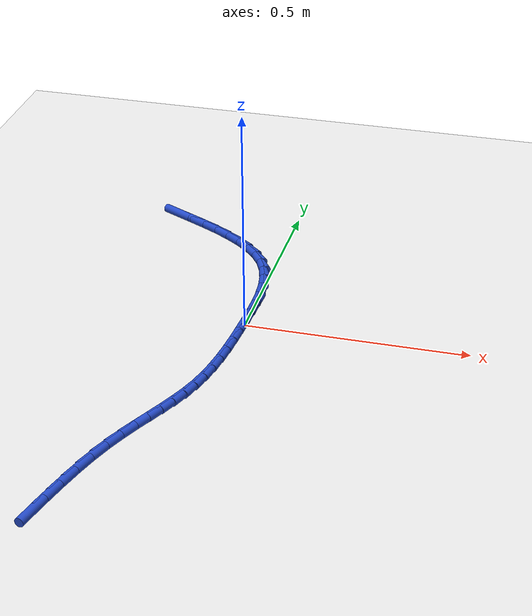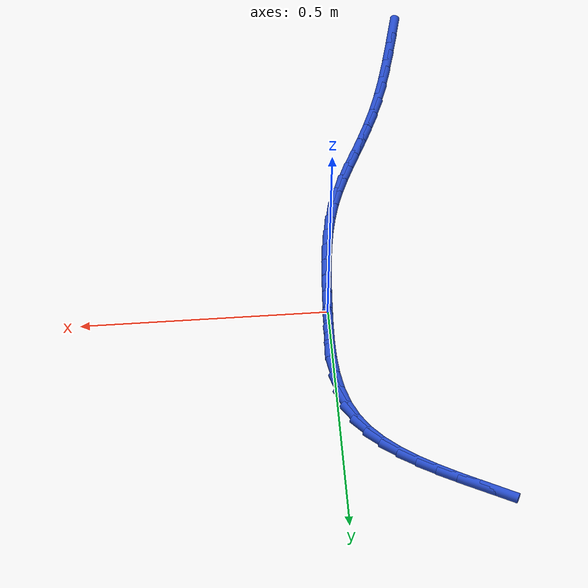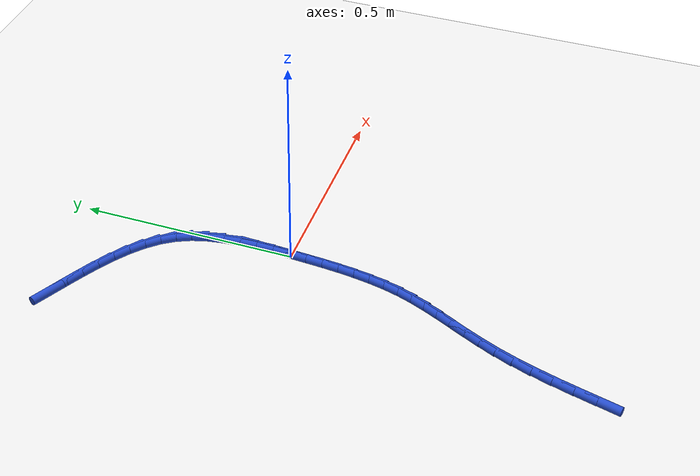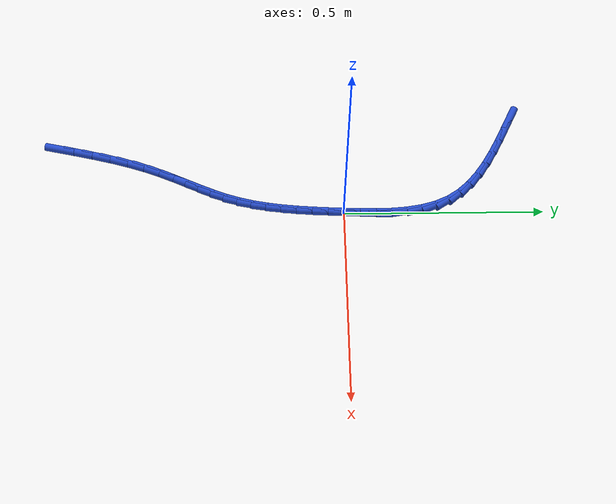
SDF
<sdf version="1.6">
 <world name="default">
  <model name="ground_plane">
   <static>1</static>
   <link name="link">
    <collision name="collision">
     <geometry><plane><normal>0 0 1</normal><size>100 100</size></plane></geometry>
     <surface><friction><ode><mu>100</mu><mu2>50</mu2></ode></friction></surface>
    </collision>
    <visual name="visual">
     <cast_shadows>0</cast_shadows>
     <geometry><plane><normal>0 0 1</normal><size>100 100</size></plane></geometry>
     <material>
      <script><uri>file://media/materials/scripts/gazebo.material</uri><name>Gazebo/WhiteGlow</name></script>
     </material>
    </visual>
   </link>
  </model>
  <model name="line">
   <link name="link_0">
    <pose>-2.168404344971009e-19 4.163336342344337e-17 0.01 0 1.57 1.52902783664615</pose>
    <collision name="collision">
     <geometry><cylinder><radius>0.01</radius><length>0.08</length></cylinder></geometry>
    </collision>
    <visual name="visual">
     <material>
      <script><name>Gazebo/Blue</name><uri>file://media/materials/scripts/gazebo.material</uri></script>
     </material>
     <geometry><cylinder><radius>0.01</radius><length>0.08</length></cylinder></geometry>
    </visual>
   </link>
   <link name="link_1">
    <pose>0.001682335990997134 0.04025420916461507 0.01 0 1.57 1.5522324395835811</pose>
    <collision name="collision">
     <geometry><cylinder><radius>0.01</radius><length>0.08</length></cylinder></geometry>
    </collision>
    <visual name="visual">
     <material>
      <script><name>Gazebo/Blue</name><uri>file://media/materials/scripts/gazebo.material</uri></script>
     </material>
     <geometry><cylinder><radius>0.01</radius><length>0.08</length></cylinder></geometry>
    </visual>
   </link>
   <link name="link_2">
    <pose>0.0024287794368318865 0.08045902669245655 0.01 0 1.57 -1.547395278893823</pose>
    <collision name="collision">
     <geometry><cylinder><radius>0.01</radius><length>0.08</length></cylinder></geometry>
    </collision>
    <visual name="visual">
     <material>
      <script><name>Gazebo/Blue</name><uri>file://media/materials/scripts/gazebo.material</uri></script>
     </material>
     <geometry><cylinder><radius>0.01</radius><length>0.08</length></cylinder></geometry>
    </visual>
   </link>
   <link name="link_3">
    <pose>0.0015000876354641073 0.12013768890854712 0.01 0 1.57 -1.4845722345314745</pose>
    <collision name="collision">
     <geometry><cylinder><radius>0.01</radius><length>0.08</length></cylinder></geometry>
    </collision>
    <visual name="visual">
     <material>
      <script><name>Gazebo/Blue</name><uri>file://media/materials/scripts/gazebo.material</uri></script>
     </material>
     <geometry><cylinder><radius>0.01</radius><length>0.08</length></cylinder></geometry>
    </visual>
   </link>
   <link name="link_4">
    <pose>-0.0018429821151463533 0.15881343213790933 0.01 0 1.57 -1.3978798858954011</pose>
    <collision name="collision">
     <geometry><cylinder><radius>0.01</radius><length>0.08</length></cylinder></geometry>
    </collision>
    <visual name="visual">
     <material>
      <script><name>Gazebo/Blue</name><uri>file://media/materials/scripts/gazebo.material</uri></script>
     </material>
     <geometry><cylinder><radius>0.01</radius><length>0.08</length></cylinder></geometry>
    </visual>
   </link>
   <link name="link_5">
    <pose>-0.008339672517039648 0.19600949270556564 0.01 0 1.57 -1.2840930743274215</pose>
    <collision name="collision">
     <geometry><cylinder><radius>0.01</radius><length>0.08</length></cylinder></geometry>
    </collision>
    <visual name="visual">
     <material>
      <script><name>Gazebo/Blue</name><uri>file://media/materials/scripts/gazebo.material</uri></script>
     </material>
     <geometry><cylinder><radius>0.01</radius><length>0.08</length></cylinder></geometry>
    </visual>
   </link>
   <link name="link_6">
    <pose>-0.018729226272255935 0.23124910693653877 0.01 0 1.57 -1.1414021076417333</pose>
    <collision name="collision">
     <geometry><cylinder><radius>0.01</radius><length>0.08</length></cylinder></geometry>
    </collision>
    <visual name="visual">
     <material>
      <script><name>Gazebo/Blue</name><uri>file://media/materials/scripts/gazebo.material</uri></script>
     </material>
     <geometry><cylinder><radius>0.01</radius><length>0.08</length></cylinder></geometry>
    </visual>
   </link>
   <link name="link_7">
    <pose>-0.03375088608283535 0.2640555111558512 0.01 0 1.57 -0.9764500421237643</pose>
    <collision name="collision">
     <geometry><cylinder><radius>0.01</radius><length>0.08</length></cylinder></geometry>
    </collision>
    <visual name="visual">
     <material>
      <script><name>Gazebo/Blue</name><uri>file://media/materials/scripts/gazebo.material</uri></script>
     </material>
     <geometry><cylinder><radius>0.01</radius><length>0.08</length></cylinder></geometry>
    </visual>
   </link>
   <link name="link_8">
    <pose>-0.05401029808813432 0.2940308731569614 0.01 0 1.57 -0.8261137103228651</pose>
    <collision name="collision">
     <geometry><cylinder><radius>0.01</radius><length>0.08</length></cylinder></geometry>
    </collision>
    <visual name="visual">
     <material>
      <script><name>Gazebo/Blue</name><uri>file://media/materials/scripts/gazebo.material</uri></script>
     </material>
     <geometry><cylinder><radius>0.01</radius><length>0.08</length></cylinder></geometry>
    </visual>
   </link>
   <link name="link_9">
    <pose>-0.07917419012969613 0.3213320920714619 0.01 0 1.57 -0.7062568643937363</pose>
    <collision name="collision">
     <geometry><cylinder><radius>0.01</radius><length>0.08</length></cylinder></geometry>
    </collision>
    <visual name="visual">
     <material>
      <script><name>Gazebo/Blue</name><uri>file://media/materials/scripts/gazebo.material</uri></script>
     </material>
     <geometry><cylinder><radius>0.01</radius><length>0.08</length></cylinder></geometry>
    </visual>
   </link>
   <link name="link_10">
    <pose>-0.10850670000065454 0.34635392512444896 0.01 0 1.57 -0.6148824756712293</pose>
    <collision name="collision">
     <geometry><cylinder><radius>0.01</radius><length>0.08</length></cylinder></geometry>
    </collision>
    <visual name="visual">
     <material>
      <script><name>Gazebo/Blue</name><uri>file://media/materials/scripts/gazebo.material</uri></script>
     </material>
     <geometry><cylinder><radius>0.01</radius><length>0.08</length></cylinder></geometry>
    </visual>
   </link>
   <link name="link_11">
    <pose>-0.1412704261000338 0.36949203904523936 0.01 0 1.57 -0.5481707559389956</pose>
    <collision name="collision">
     <geometry><cylinder><radius>0.01</radius><length>0.08</length></cylinder></geometry>
    </collision>
    <visual name="visual">
     <material>
      <script><name>Gazebo/Blue</name><uri>file://media/materials/scripts/gazebo.material</uri></script>
     </material>
     <geometry><cylinder><radius>0.01</radius><length>0.08</length></cylinder></geometry>
    </visual>
   </link>
   <link name="link_12">
    <pose>-0.176727966826858 0.3911421005631499 0.01 0 1.57 -0.5024327338839962</pose>
    <collision name="collision">
     <geometry><cylinder><radius>0.01</radius><length>0.08</length></cylinder></geometry>
    </collision>
    <visual name="visual">
     <material>
      <script><name>Gazebo/Blue</name><uri>file://media/materials/scripts/gazebo.material</uri></script>
     </material>
     <geometry><cylinder><radius>0.01</radius><length>0.08</length></cylinder></geometry>
    </visual>
   </link>
   <link name="link_13">
    <pose>-0.2141419205801512 0.4116997764074969 0.01 0 1.57 -0.47485874763186886</pose>
    <collision name="collision">
     <geometry><cylinder><radius>0.01</radius><length>0.08</length></cylinder></geometry>
    </collision>
    <visual name="visual">
     <material>
      <script><name>Gazebo/Blue</name><uri>file://media/materials/scripts/gazebo.material</uri></script>
     </material>
     <geometry><cylinder><radius>0.01</radius><length>0.08</length></cylinder></geometry>
    </visual>
   </link>
   <link name="link_14">
    <pose>-0.2527748857589378 0.4315607333075975 0.01 0 1.57 -0.46370113612660235</pose>
    <collision name="collision">
     <geometry><cylinder><radius>0.01</radius><length>0.08</length></cylinder></geometry>
    </collision>
    <visual name="visual">
     <material>
      <script><name>Gazebo/Blue</name><uri>file://media/materials/scripts/gazebo.material</uri></script>
     </material>
     <geometry><cylinder><radius>0.01</radius><length>0.08</length></cylinder></geometry>
    </visual>
   </link>
   <link name="link_15">
    <pose>-0.2918894607622417 0.4511206379927679 0.01 0 1.57 -0.4682716443202669</pose>
    <collision name="collision">
     <geometry><cylinder><radius>0.01</radius><length>0.08</length></cylinder></geometry>
    </collision>
    <visual name="visual">
     <material>
      <script><name>Gazebo/Blue</name><uri>file://media/materials/scripts/gazebo.material</uri></script>
     </material>
     <geometry><cylinder><radius>0.01</radius><length>0.08</length></cylinder></geometry>
    </visual>
   </link>
   <link name="link_211">
    <pose>-0.20534447398992722 -0.7341957206515657 0.01 0 1.57 1.3374356050256042</pose>
    <collision name="collision">
     <geometry><cylinder><radius>0.01</radius><length>0.08</length></cylinder></geometry>
    </collision>
    <visual name="visual">
     <material>
      <script><name>Gazebo/Blue</name><uri>file://media/materials/scripts/gazebo.material</uri></script>
     </material>
     <geometry><cylinder><radius>0.01</radius><length>0.08</length></cylinder></geometry>
    </visual>
   </link>
   <link name="link_212">
    <pose>-0.193663808148834 -0.6850535182315074 0.01 0 1.57 1.3228942203919856</pose>
    <collision name="collision">
     <geometry><cylinder><radius>0.01</radius><length>0.08</length></cylinder></geometry>
    </collision>
    <visual name="visual">
     <material>
      <script><name>Gazebo/Blue</name><uri>file://media/materials/scripts/gazebo.material</uri></script>
     </material>
     <geometry><cylinder><radius>0.01</radius><length>0.08</length></cylinder></geometry>
    </visual>
   </link>
   <link name="link_213">
    <pose>-0.1814786460205803 -0.6369114564018664 0.01 0 1.57 1.30064926898679</pose>
    <collision name="collision">
     <geometry><cylinder><radius>0.01</radius><length>0.08</length></cylinder></geometry>
    </collision>
    <visual name="visual">
     <material>
      <script><name>Gazebo/Blue</name><uri>file://media/materials/scripts/gazebo.material</uri></script>
     </material>
     <geometry><cylinder><radius>0.01</radius><length>0.08</length></cylinder></geometry>
    </visual>
   </link>
   <link name="link_214">
    <pose>-0.16859618346248287 -0.590390341800777 0.01 0 1.57 1.2692438725747424</pose>
    <collision name="collision">
     <geometry><cylinder><radius>0.01</radius><length>0.08</length></cylinder></geometry>
    </collision>
    <visual name="visual">
     <material>
      <script><name>Gazebo/Blue</name><uri>file://media/materials/scripts/gazebo.material</uri></script>
     </material>
     <geometry><cylinder><radius>0.01</radius><length>0.08</length></cylinder></geometry>
    </visual>
   </link>
   <link name="link_215">
    <pose>-0.15482361633185807 -0.5461109810663726 0.01 0 1.57 1.2266099709107525</pose>
    <collision name="collision">
     <geometry><cylinder><radius>0.01</radius><length>0.08</length></cylinder></geometry>
    </collision>
    <visual name="visual">
     <material>
      <script><name>Gazebo/Blue</name><uri>file://media/materials/scripts/gazebo.material</uri></script>
     </material>
     <geometry><cylinder><radius>0.01</radius><length>0.08</length></cylinder></geometry>
    </visual>
   </link>
   <link name="link_216">
    <pose>-0.13997384882007677 -0.5046837295988726 0.01 0 1.57 1.1799942939246177</pose>
    <collision name="collision">
     <geometry><cylinder><radius>0.01</radius><length>0.08</length></cylinder></geometry>
    </collision>
    <visual name="visual">
     <material>
      <script><name>Gazebo/Blue</name><uri>file://media/materials/scripts/gazebo.material</uri></script>
     </material>
     <geometry><cylinder><radius>0.01</radius><length>0.08</length></cylinder></geometry>
    </visual>
   </link>
   <link name="link_217">
    <pose>-0.12412931945143342 -0.4662254595136055 0.01 0 1.57 1.1445974065373254</pose>
    <collision name="collision">
     <geometry><cylinder><radius>0.01</radius><length>0.08</length></cylinder></geometry>
    </collision>
    <visual name="visual">
     <material>
      <script><name>Gazebo/Blue</name><uri>file://media/materials/scripts/gazebo.material</uri></script>
     </material>
     <geometry><cylinder><radius>0.01</radius><length>0.08</length></cylinder></geometry>
    </visual>
   </link>
   <link name="link_218">
    <pose>-0.10775295149193174 -0.43015642347059074 0.01 0 1.57 1.1245390527048043</pose>
    <collision name="collision">
     <geometry><cylinder><radius>0.01</radius><length>0.08</length></cylinder></geometry>
    </collision>
    <visual name="visual">
     <material>
      <script><name>Gazebo/Blue</name><uri>file://media/materials/scripts/gazebo.material</uri></script>
     </material>
     <geometry><cylinder><radius>0.01</radius><length>0.08</length></cylinder></geometry>
    </visual>
   </link>
   <link name="link_219">
    <pose>-0.09133639669186693 -0.39584427590740767 0.01 0 1.57 1.1224186056260346</pose>
    <collision name="collision">
     <geometry><cylinder><radius>0.01</radius><length>0.08</length></cylinder></geometry>
    </collision>
    <visual name="visual">
     <material>
      <script><name>Gazebo/Blue</name><uri>file://media/materials/scripts/gazebo.material</uri></script>
     </material>
     <geometry><cylinder><radius>0.01</radius><length>0.08</length></cylinder></geometry>
    </visual>
   </link>
   <link name="link_220">
    <pose>-0.07537130680153556 -0.3626566712616382 0.01 0 1.57 1.1401098999077428</pose>
    <collision name="collision">
     <geometry><cylinder><radius>0.01</radius><length>0.08</length></cylinder></geometry>
    </collision>
    <visual name="visual">
     <material>
      <script><name>Gazebo/Blue</name><uri>file://media/materials/scripts/gazebo.material</uri></script>
     </material>
     <geometry><cylinder><radius>0.01</radius><length>0.08</length></cylinder></geometry>
    </visual>
   </link>
   <link name="link_221">
    <pose>-0.06034933357123281 -0.3299612639708618 0.01 0 1.57 1.1784541438035625</pose>
    <collision name="collision">
     <geometry><cylinder><radius>0.01</radius><length>0.08</length></cylinder></geometry>
    </collision>
    <visual name="visual">
     <material>
      <script><name>Gazebo/Blue</name><uri>file://media/materials/scripts/gazebo.material</uri></script>
     </material>
     <geometry><cylinder><radius>0.01</radius><length>0.08</length></cylinder></geometry>
    </visual>
   </link>
   <link name="link_222">
    <pose>-0.046762128751254364 -0.29712570847265846 0.01 0 1.57 1.2367996524071434</pose>
    <collision name="collision">
     <geometry><cylinder><radius>0.01</radius><length>0.08</length></cylinder></geometry>
    </collision>
    <visual name="visual">
     <material>
      <script><name>Gazebo/Blue</name><uri>file://media/materials/scripts/gazebo.material</uri></script>
     </material>
     <geometry><cylinder><radius>0.01</radius><length>0.08</length></cylinder></geometry>
    </visual>
   </link>
   <link name="link_223">
    <pose>-0.03510052234546612 -0.26351844335373553 0.01 0 1.57 1.3054086069947681</pose>
    <collision name="collision">
     <geometry><cylinder><radius>0.01</radius><length>0.08</length></cylinder></geometry>
    </collision>
    <visual name="visual">
     <material>
      <script><name>Gazebo/Blue</name><uri>file://media/materials/scripts/gazebo.material</uri></script>
     </material>
     <geometry><cylinder><radius>0.01</radius><length>0.08</length></cylinder></geometry>
    </visual>
   </link>
   <link name="link_224">
    <pose>-0.025640437120690824 -0.22871298180345215 0.01 0 1.57 1.3655642591882857</pose>
    <collision name="collision">
     <geometry><cylinder><radius>0.01</radius><length>0.08</length></cylinder></geometry>
    </collision>
    <visual name="visual">
     <material>
      <script><name>Gazebo/Blue</name><uri>file://media/materials/scripts/gazebo.material</uri></script>
     </material>
     <geometry><cylinder><radius>0.01</radius><length>0.08</length></cylinder></geometry>
    </visual>
   </link>
   <link name="link_225">
    <pose>-0.018156590366887923 -0.1927611108721427 0.01 0 1.57 1.4151047248096635</pose>
    <collision name="collision">
     <geometry><cylinder><radius>0.01</radius><length>0.08</length></cylinder></geometry>
    </collision>
    <visual name="visual">
     <material>
      <script><name>Gazebo/Blue</name><uri>file://media/materials/scripts/gazebo.material</uri></script>
     </material>
     <geometry><cylinder><radius>0.01</radius><length>0.08</length></cylinder></geometry>
    </visual>
   </link>
   <link name="link_226">
    <pose>-0.012352383979415715 -0.15578267011694424 0.01 0 1.57 1.4546227344087423</pose>
    <collision name="collision">
     <geometry><cylinder><radius>0.01</radius><length>0.08</length></cylinder></geometry>
    </collision>
    <visual name="visual">
     <material>
      <script><name>Gazebo/Blue</name><uri>file://media/materials/scripts/gazebo.material</uri></script>
     </material>
     <geometry><cylinder><radius>0.01</radius><length>0.08</length></cylinder></geometry>
    </visual>
   </link>
   <link name="link_227">
    <pose>-0.007931219853632517 -0.1178974990949938 0.01 0 1.57 1.484778381736731</pose>
    <collision name="collision">
     <geometry><cylinder><radius>0.01</radius><length>0.08</length></cylinder></geometry>
    </collision>
    <visual name="visual">
     <material>
      <script><name>Gazebo/Blue</name><uri>file://media/materials/scripts/gazebo.material</uri></script>
     </material>
     <geometry><cylinder><radius>0.01</radius><length>0.08</length></cylinder></geometry>
    </visual>
   </link>
   <link name="link_228">
    <pose>-0.004596499884896558 -0.07922543736342738 0.01 0 1.57 1.506195663063135</pose>
    <collision name="collision">
     <geometry><cylinder><radius>0.01</radius><length>0.08</length></cylinder></geometry>
    </collision>
    <visual name="visual">
     <material>
      <script><name>Gazebo/Blue</name><uri>file://media/materials/scripts/gazebo.material</uri></script>
     </material>
     <geometry><cylinder><radius>0.01</radius><length>0.08</length></cylinder></geometry>
    </visual>
   </link>
   <link name="link_229">
    <pose>-0.002051625968566312 -0.03988632447938399 0.01 0 1.57 1.5194047909495518</pose>
    <collision name="collision">
     <geometry><cylinder><radius>0.01</radius><length>0.08</length></cylinder></geometry>
    </collision>
    <visual name="visual">
     <material>
      <script><name>Gazebo/Blue</name><uri>file://media/materials/scripts/gazebo.material</uri></script>
     </material>
     <geometry><cylinder><radius>0.01</radius><length>0.08</length></cylinder></geometry>
    </visual>
   </link>
   <link name="link_230">
    <pose>1.5395670849294163e-17 3.469446951953614e-16 0.01 0 1.57 1.524815213700547</pose>
    <collision name="collision">
     <geometry><cylinder><radius>0.01</radius><length>0.08</length></cylinder></geometry>
    </collision>
    <visual name="visual">
     <material>
      <script><name>Gazebo/Blue</name><uri>file://media/materials/scripts/gazebo.material</uri></script>
     </material>
     <geometry><cylinder><radius>0.01</radius><length>0.08</length></cylinder></geometry>
    </visual>
   </link>
   <link name="link_231">
    <pose>0.0018549761254441136 0.04031369651758858 0.01 0 1.57 1.522707746652328</pose>
    <collision name="collision">
     <geometry><cylinder><radius>0.01</radius><length>0.08</length></cylinder></geometry>
    </collision>
    <visual name="visual">
     <material>
      <script><name>Gazebo/Blue</name><uri>file://media/materials/scripts/gazebo.material</uri></script>
     </material>
     <geometry><cylinder><radius>0.01</radius><length>0.08</length></cylinder></geometry>
    </visual>
   </link>
   <link name="link_232">
    <pose>0.0038099005124076785 0.0809349255162437 0.01 0 1.57 1.5237574239878589</pose>
    <collision name="collision">
     <geometry><cylinder><radius>0.01</radius><length>0.08</length></cylinder></geometry>
    </collision>
    <visual name="visual">
     <material>
      <script><name>Gazebo/Blue</name><uri>file://media/materials/scripts/gazebo.material</uri></script>
     </material>
     <geometry><cylinder><radius>0.01</radius><length>0.08</length></cylinder></geometry>
    </visual>
   </link>
  </model>
 </world>
</sdf>
